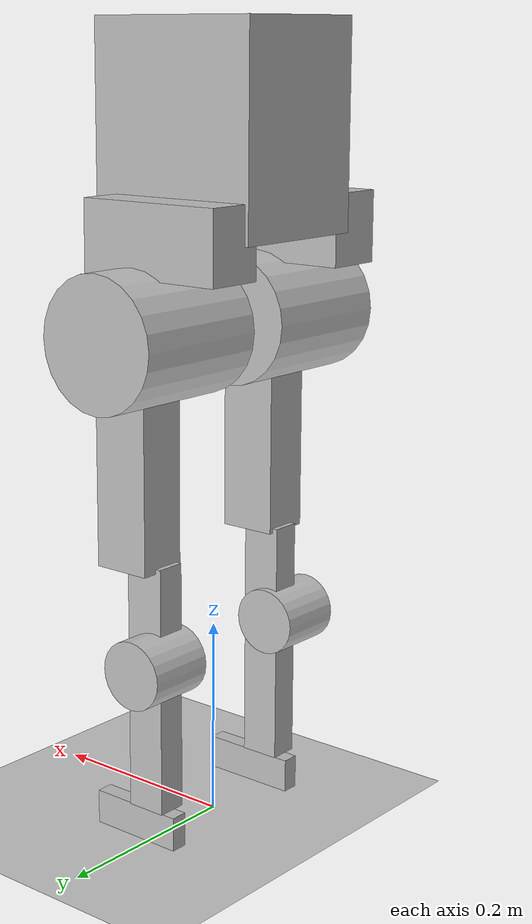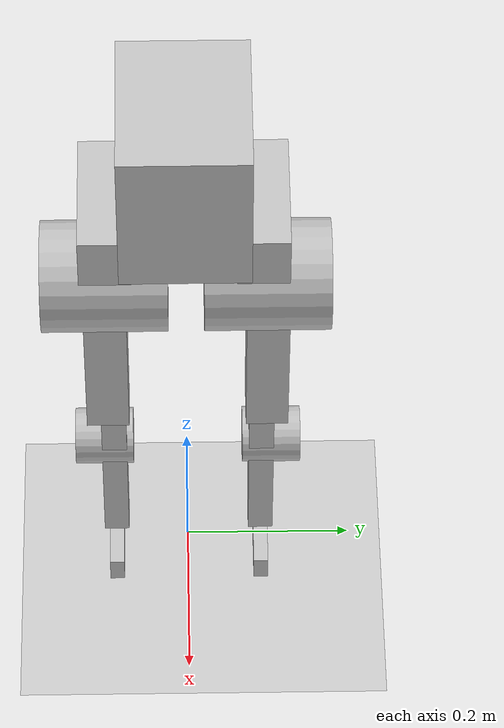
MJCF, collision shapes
<mujoco model="hunter scene">
  <include file="hunter_test.xml"/>

  <statistic center="0 0 1" extent="1.8"/>

  <visual>
    <headlight diffuse="0.6 0.6 0.6" ambient="0.3 0.3 0.3" specular="0 0 0"/>
    <rgba haze="0.15 0.25 0.35 1"/>
    <global azimuth="160" elevation="-20"/>
  </visual>

  <asset>
    <texture type="skybox" builtin="gradient" rgb1="0.3 0.5 0.7" rgb2="0 0 0" width="512" height="3072"/>
    <texture type="2d" name="groundplane" builtin="checker" mark="edge" rgb1="0.2 0.3 0.4" rgb2="0.1 0.2 0.3"
      markrgb="0.8 0.8 0.8" width="300" height="300"/>
    <material name="groundplane" texture="groundplane" texuniform="true" texrepeat="5 5" reflectance="0.2"/>
  </asset>

  <worldbody>
    <light pos="0 0 3.5" dir="0 0 -1" directional="true"/>
    <geom name="floor" size="0 0 0.05" type="plane" material="groundplane"/>
  </worldbody>

  <keyframe>
    <key name="home"
      qpos="
    0 0 0.98
    1 0 0 0
    0 0 0 0 0
    0 0 0 0 0 "/>
  </keyframe>

</mujoco>

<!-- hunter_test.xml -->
<mujoco model="hunter">
  <default>
    <light castshadow="false" />
    <geom rgba="0.784 0.784 0.784 1" />
    <joint damping="0.1" armature="0.1" />
    <default class="hunter">
      <joint damping="1" armature="0.1" />
      <default class="visual">
        <geom type="mesh" contype="0" conaffinity="0" group="1" density="0" rgba="0.75294 0.75294 0.75294 1" />
      </default>
      <default class="collision">
        <geom group="3" mass="0" density="0" />
        <default class="foot">
          <geom type="sphere" size=".001" />
          <default class="foot1">
            <geom size="0.001" contype="0" conaffinity="0" density="0" />
          </default>
          <default class="foot2">
            <geom size="0.001" />
          </default>
        </default>
      </default>
      <site size="0.001" rgba="0.5 0.5 0.5 0.3" group="4" />
    </default>
    <default class="hunter_motor">
      <motor gear="1" ctrllimited="true" ctrlrange="-100 100" />
    </default>
  </default>
  <compiler angle="radian" meshdir="meshes/" />
  <option timestep="0.001" tolerance="1e-10" solver="Newton" jacobian="dense" cone="pyramidal" gravity="0 0 -9.81" integrator="Euler" iterations="100">
    <flag contact="enable" energy="enable" />
  </option>
  <asset>
    <mesh name="base_link" content_type="model/stl" file="base_link.STL" />
    <mesh name="leg_l1_link" content_type="model/stl" file="leg_l1_link.STL" />
    <mesh name="leg_l2_link" content_type="model/stl" file="leg_l2_link.STL" />
    <mesh name="leg_l3_link" content_type="model/stl" file="leg_l3_link.STL" />
    <mesh name="leg_l4_link" content_type="model/stl" file="leg_l4_link.STL" />
    <mesh name="leg_l5_link" content_type="model/stl" file="leg_l5_link.STL" />
    <mesh name="leg_r1_link" content_type="model/stl" file="leg_r1_link.STL" />
    <mesh name="leg_r2_link" content_type="model/stl" file="leg_r2_link.STL" />
    <mesh name="leg_r3_link" content_type="model/stl" file="leg_r3_link.STL" />
    <mesh name="leg_r4_link" content_type="model/stl" file="leg_r4_link.STL" />
    <mesh name="leg_r5_link" content_type="model/stl" file="leg_r5_link.STL" />
  </asset>
  <worldbody>
    <body name="base_link" pos="0 0 0.7" childclass="hunter">
      <inertial pos="-0.010856 -6.8e-05 -0.007128" quat="0.979606 0.00882716 0.200723 -0.00231074" mass="5.67363" diaginertia="0.0355096 0.0296524 0.0283549" />
      <joint name="float_base" type="free" />
      <geom class="visual" type="mesh" contype="0" conaffinity="0" density="0" rgba="0.75294 0.75294 0.75294 1" mesh="base_link" group="1" />
      <geom class="collision" size="0.092 0.075 0.1" pos="-0.01 0 -0.006" type="box" rgba="0.75294 0.75294 0.75294 1" group="3" />
      <site name="imu" pos="0 0 0" />
      <body name="imu_link">
        <inertial pos="0 0 0" mass="0.01" diaginertia="1e-06 1e-06 1e-06" />
        <geom class="visual" size="0.0075 0.0075 0.002" type="box" contype="0" conaffinity="0" density="0" group="1" />
      </body>
      <body name="leg_l1_link" pos="-0.002 0.09 -0.1035">
        <inertial pos="0.002501 5.3e-05 -0.002722" quat="0.472677 0.527005 0.495251 0.503556" mass="0.453728" diaginertia="0.000163063 0.000147076 8.18618e-05" />
        <joint name="leg_l1_joint" pos="0 0 0" axis="1 0 0" range="-0.2 0.5" actuatorfrcrange="-23.7 23.7" frictionloss="0.2" />
        <geom class="visual" type="mesh" contype="0" conaffinity="0" density="0" rgba="0.75294 0.75294 0.75294 1" mesh="leg_l1_link" group="1" />
        <geom class="collision" size="0.03 0.035 0.0775" pos="-0.019 -0.001 0" quat="0.500398 0.5 0.499602 0.5" type="box" rgba="0.75294 0.75294 0.75294 1" group="3" />
        <body name="leg_l2_link" pos="0 -0.00016972 -0.0325">
          <inertial pos="-0.000273 0.043826 -0.058639" quat="0.7074 0.0648812 -0.0612384 0.70116" mass="0.925998" diaginertia="0.00166463 0.00123897 0.0010754" />
          <joint name="leg_l2_joint" pos="0 0 0" axis="0 0 1" range="-0.5 1" actuatorfrcrange="-23.7 23.7" frictionloss="0.2" />
          <geom class="visual" type="mesh" contype="0" conaffinity="0" density="0" rgba="0.75294 0.75294 0.75294 1" mesh="leg_l2_link" group="1" />
          <geom class="collision" size="0.065 0.073" pos="0 0.0046 -0.057" quat="0.707388 0.706825 0 0" type="cylinder" rgba="0.75294 0.75294 0.75294 1" group="3" />
          <body name="leg_l3_link" pos="0 -0.01433 -0.0575">
            <inertial pos="0.003163 -0.022552 -0.027258" quat="0.678041 0.0230005 -0.0875592 0.729428" mass="1.39047" diaginertia="0.00722081 0.00694653 0.00181065" />
            <joint name="leg_l3_joint" pos="0 0 0" axis="0 -1 0" range="-0.8 1.2" actuatorfrcrange="-23.7 23.7" frictionloss="0.2" />
            <geom class="visual" type="mesh" contype="0" conaffinity="0" density="0" rgba="0.75294 0.75294 0.75294 1" mesh="leg_l3_link" group="1" />
            <geom class="collision" size="0.03 0.125 0.025" pos="0.015 0.02 -0.1" quat="0.707388 0.706825 0 0" type="box" rgba="0.75294 0.75294 0.75294 1" group="3" />
            <body name="leg_l4_link" pos="0 0.0145 -0.24">
              <inertial pos="-0.012044 0.006361 -0.093905" quat="0.696191 0.0388817 0.0714045 0.713237" mass="0.649518" diaginertia="0.00246473 0.00221871 0.000430556" />
              <joint name="leg_l4_joint" pos="0 0 0" axis="0 1 0" range="0 1.5" actuatorfrcrange="-23.7 23.7" frictionloss="0.2" />
              <geom class="visual" type="mesh" contype="0" conaffinity="0" density="0" rgba="0.75294 0.75294 0.75294 1" mesh="leg_l4_link" group="1" />
              <geom class="collision" size="0.0205 0.125 0.015" pos="0 0 -0.105" quat="0.707388 0.706825 0 0" type="box" rgba="0.75294 0.75294 0.75294 1" group="3" />
              <geom class="collision" size="0.034 0.035" pos="-0.011 0.012 -0.079" quat="0.707388 0.706825 0 0" type="cylinder" rgba="0.75294 0.75294 0.75294 1" group="3" />
              <body name="leg_l5_link" pos="0.005 0 -0.23995">
                <inertial pos="0.012435 0 -0.015511" quat="0.48854 0.511203 0.511203 0.48854" mass="0.030265" diaginertia="2.5e-05 2.40454e-05 1.95464e-06" />
                <joint name="leg_l5_joint" pos="0 0 0" axis="0 -1 0" range="-1.1 1.1" actuatorfrcrange="-23.7 23.7" frictionloss="0.2" />
                <geom class="visual" type="mesh" contype="0" conaffinity="0" density="0" rgba="0.75294 0.75294 0.75294 1" mesh="leg_l5_link" group="1" />
                <geom class="collision" size="0.05005 0.01725 0.00875" pos="0.01503 0 -0.0102" quat="0.707388 0.706825 0 0" type="box" rgba="0.75294 0.75294 0.75294 1" group="3" />
                <body name="leg_l_f1_link" pos="0.06 0 -0.007">
                  <inertial pos="0 0 0" mass="0.01" diaginertia="1e-06 1e-06 1e-06" />
                  <geom class="foot1"/>
                  <geom class="foot2"/>
                  <site name="leg_l_f1_site" pos="0 0 0" />
                </body>
                <body name="leg_l_f2_link" pos="-0.03 0 -0.007">
                  <inertial pos="0 0 0" mass="0.01" diaginertia="1e-06 1e-06 1e-06" />
                  <geom class="foot1"/>
                  <geom class="foot2"/>
                  <site name="leg_l_f2_site" pos="0 0 0" />
                </body>
              </body>
            </body>
          </body>
        </body>
      </body>
      <body name="leg_r1_link" pos="-0.002 -0.09 -0.1035">
        <inertial pos="0.002501 -5.3e-05 -0.002722" quat="0.503556 0.495251 0.527005 0.472677" mass="0.453728" diaginertia="0.000163063 0.000147076 8.18618e-05" />
        <joint name="leg_r1_joint" pos="0 0 0" axis="1 0 0" range="-0.5 0.2" actuatorfrcrange="-23.7 23.7" frictionloss="0.2" />
        <geom class="visual" type="mesh" contype="0" conaffinity="0" density="0" rgba="0.75294 0.75294 0.75294 1" mesh="leg_r1_link" group="1" />
        <geom class="collision" size="0.03 0.035 0.0775" pos="-0.019 -0.001 0" quat="0.500398 0.5 0.499602 0.5" type="box" rgba="0.75294 0.75294 0.75294 1" group="3" />
        <body name="leg_r2_link" pos="0 0.00016972 -0.0325">
          <inertial pos="9e-05 -0.043826 -0.058639" quat="0.7074 0.0648812 -0.0612384 0.70116" mass="0.925998" diaginertia="0.00166463 0.00123897 0.0010754" />
          <joint name="leg_r2_joint" pos="0 0 0" axis="0 0 1" range="-1 0.5" actuatorfrcrange="-23.7 23.7" frictionloss="0.2" />
          <geom class="visual" type="mesh" contype="0" conaffinity="0" density="0" rgba="0.75294 0.75294 0.75294 1" mesh="leg_r2_link" group="1" />
          <geom class="collision" size="0.065 0.073" pos="0 -0.0033 -0.057" quat="0.707388 0.706825 0 0" type="cylinder" rgba="0.75294 0.75294 0.75294 1" group="3" />
          <body name="leg_r3_link" pos="0 0.01633 -0.0575">
            <inertial pos="0.003311 0.02265 -0.027271" quat="0.734236 -0.0877978 0.023126 0.672795" mass="1.38862" diaginertia="0.00722344 0.00694292 0.00180965" />
            <joint name="leg_r3_joint" pos="0 0 0" axis="0 1 0" range="-1.2 0.8" actuatorfrcrange="-23.7 23.7" frictionloss="0.2" />
            <geom class="visual" type="mesh" contype="0" conaffinity="0" density="0" rgba="0.75294 0.75294 0.75294 1" mesh="leg_r3_link" group="1" />
            <geom class="collision" size="0.03 0.125 0.025" pos="0.015 -0.02 -0.1" quat="0.707388 0.706825 0 0" type="box" rgba="0.75294 0.75294 0.75294 1" group="3" />
            <body name="leg_r4_link" pos="0 -0.0145 -0.24">
              <inertial pos="-0.007886 -0.007123 -0.088091" quat="0.589012 0.00853647 -0.018288 0.807872" mass="0.61472" diaginertia="0.00177827 0.00175932 0.00018341" />
              <joint name="leg_r4_joint" pos="0 0 0" axis="0 1 0" range="0 1.5" actuatorfrcrange="-23.7 23.7" frictionloss="0.2" />
              <geom class="visual" type="mesh" contype="0" conaffinity="0" density="0" rgba="0.75294 0.75294 0.75294 1" mesh="leg_r4_link" group="1" />
              <geom class="collision" size="0.0205 0.125 0.015" pos="0 0 -0.105" quat="0.707388 0.706825 0 0" type="box" rgba="0.75294 0.75294 0.75294 1" group="3" />
              <geom class="collision" size="0.034 0.035" pos="-0.011 -0.012 -0.079" quat="0.707388 0.706825 0 0" type="cylinder" rgba="0.75294 0.75294 0.75294 1" group="3" />
              <body name="leg_r5_link" pos="0.005 0 -0.23995">
                <inertial pos="0.012435 -0.0005 -0.015511" quat="0.48854 0.511203 0.511203 0.48854" mass="0.030265" diaginertia="2.5e-05 2.40454e-05 1.95464e-06" />
                <joint name="leg_r5_joint" pos="0 0 0" axis="0 1 0" range="-1.1 1.1" actuatorfrcrange="-23.7 23.7" frictionloss="0.2" />
                <geom class="visual" type="mesh" contype="0" conaffinity="0" density="0" rgba="0.75294 0.75294 0.75294 1" mesh="leg_r5_link" group="1" />
                <geom class="collision" size="0.05005 0.01725 0.00875" pos="0.01503 0 -0.0102" quat="0.707388 0.706825 0 0" type="box" rgba="0.75294 0.75294 0.75294 1" group="3" />
                <body name="leg_r_f1_link" pos="0.06 0 -0.007">
                  <inertial pos="0 0 0" mass="0.01" diaginertia="1e-06 1e-06 1e-06" />
                  <geom class="foot1"/>
                  <geom class="foot2"/>
                  <site name="leg_r_f1_site" pos="0 0 0" />
                </body>
                <body name="leg_r_f2_link" pos="-0.03 0 -0.007">
                  <inertial pos="0 0 0" mass="0.01" diaginertia="1e-06 1e-06 1e-06" />
                  <geom class="foot1"/>
                  <geom class="foot2"/>
                  <site name="leg_r_f2_site" pos="0 0 0" />
                </body>
              </body>
            </body>
          </body>
        </body>
      </body>
    </body>
  </worldbody>
  <sensor>
    <accelerometer name="accel" site="imu" />
    <gyro name="gyro" site="imu" />
    <touch name="touch_L_f1" site="leg_l_f1_site" />
    <touch name="touch_L_f2" site="leg_l_f2_site" />
    <touch name="touch_R_f1" site="leg_r_f1_site" />
    <touch name="touch_R_f2" site="leg_r_f2_site" />
    <jointpos name="jpos_L1" joint="leg_l1_joint" />
    <jointpos name="jpos_L2" joint="leg_l2_joint" />
    <jointpos name="jpos_L3" joint="leg_l3_joint" />
    <jointpos name="jpos_L4" joint="leg_l4_joint" />
    <jointpos name="jpos_L5" joint="leg_l5_joint" />
    <jointpos name="jpos_R1" joint="leg_r1_joint" />
    <jointpos name="jpos_R2" joint="leg_r2_joint" />
    <jointpos name="jpos_R3" joint="leg_r3_joint" />
    <jointpos name="jpos_R4" joint="leg_r4_joint" />
    <jointpos name="jpos_R5" joint="leg_r5_joint" />
    <jointvel name="jvel_L1" joint="leg_l1_joint" />
    <jointvel name="jvel_L2" joint="leg_l2_joint" />
    <jointvel name="jvel_L3" joint="leg_l3_joint" />
    <jointvel name="jvel_L4" joint="leg_l4_joint" />
    <jointvel name="jvel_L5" joint="leg_l5_joint" />
    <jointvel name="jvel_R1" joint="leg_r1_joint" />
    <jointvel name="jvel_R2" joint="leg_r2_joint" />
    <jointvel name="jvel_R3" joint="leg_r3_joint" />
    <jointvel name="jvel_R4" joint="leg_r4_joint" />
    <jointvel name="jvel_R5" joint="leg_r5_joint" />
  </sensor>
  <actuator>
    <motor name="leg_l1_joint" joint="leg_l1_joint" class="hunter_motor" ctrlrange="-23.7 23.7" />
    <motor name="leg_l2_joint" joint="leg_l2_joint" class="hunter_motor" ctrlrange="-23.7 23.7" />
    <motor name="leg_l3_joint" joint="leg_l3_joint" class="hunter_motor" ctrlrange="-23.7 23.7" />
    <motor name="leg_l4_joint" joint="leg_l4_joint" class="hunter_motor" ctrlrange="-23.7 23.7" />
    <motor name="leg_l5_joint" joint="leg_l5_joint" class="hunter_motor" ctrlrange="-23.7 23.7" />
    <motor name="leg_r1_joint" joint="leg_r1_joint" class="hunter_motor" ctrlrange="-23.7 23.7" />
    <motor name="leg_r2_joint" joint="leg_r2_joint" class="hunter_motor" ctrlrange="-23.7 23.7" />
    <motor name="leg_r3_joint" joint="leg_r3_joint" class="hunter_motor" ctrlrange="-23.7 23.7" />
    <motor name="leg_r4_joint" joint="leg_r4_joint" class="hunter_motor" ctrlrange="-23.7 23.7" />
    <motor name="leg_r5_joint" joint="leg_r5_joint" class="hunter_motor" ctrlrange="-23.7 23.7" />
  </actuator>
</mujoco>
